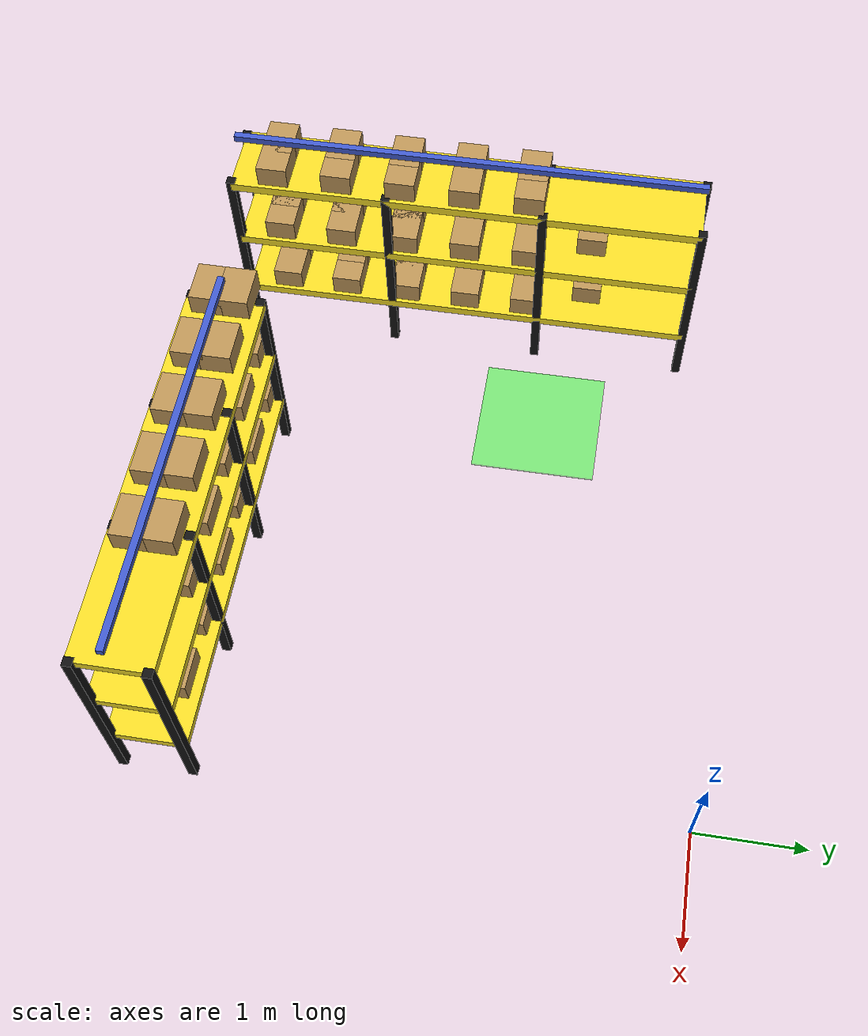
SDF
<sdf version="1.6">
 <world name="fuel_warehouse_world">
  <include><uri>model://sun</uri></include>
  <model name="left_rack_bottom">
   <static>true</static>
   <pose>-5.2 -2.7 0 0 0 1.5708</pose>
   <link name="deck_0">
    <pose>0 0 0.55 0 0 0</pose>
    <visual name="visual">
     <geometry><box><size>4.4 0.7 0.08</size></box></geometry>
     <material><ambient>0.95 0.85 0.15 1</ambient><diffuse>0.95 0.85 0.15 1</diffuse></material>
    </visual>
    <collision name="collision"><geometry><box><size>4.4 0.7 0.08</size></box></geometry></collision>
   </link>
   <link name="deck_1">
    <pose>0 0 1.25 0 0 0</pose>
    <visual name="visual">
     <geometry><box><size>4.4 0.7 0.08</size></box></geometry>
     <material><ambient>0.95 0.85 0.15 1</ambient><diffuse>0.95 0.85 0.15 1</diffuse></material>
    </visual>
    <collision name="collision"><geometry><box><size>4.4 0.7 0.08</size></box></geometry></collision>
   </link>
   <link name="deck_2">
    <pose>0 0 1.95 0 0 0</pose>
    <visual name="visual">
     <geometry><box><size>4.4 0.7 0.08</size></box></geometry>
     <material><ambient>0.95 0.85 0.15 1</ambient><diffuse>0.95 0.85 0.15 1</diffuse></material>
    </visual>
    <collision name="collision"><geometry><box><size>4.4 0.7 0.08</size></box></geometry></collision>
   </link>
   <link name="leg_0_0">
    <pose>-2.2 -0.31 1.0 0 0 0</pose>
    <visual name="visual">
     <geometry><box><size>0.08 0.08 2.0</size></box></geometry>
     <material><ambient>0.07 0.07 0.07 1</ambient><diffuse>0.07 0.07 0.07 1</diffuse></material>
    </visual>
    <collision name="collision"><geometry><box><size>0.08 0.08 2.0</size></box></geometry></collision>
   </link>
   <link name="leg_0_1">
    <pose>-2.2 0.31 1.0 0 0 0</pose>
    <visual name="visual">
     <geometry><box><size>0.08 0.08 2.0</size></box></geometry>
     <material><ambient>0.07 0.07 0.07 1</ambient><diffuse>0.07 0.07 0.07 1</diffuse></material>
    </visual>
    <collision name="collision"><geometry><box><size>0.08 0.08 2.0</size></box></geometry></collision>
   </link>
   <link name="leg_1_0">
    <pose>-0.7333333333333334 -0.31 1.0 0 0 0</pose>
    <visual name="visual">
     <geometry><box><size>0.08 0.08 2.0</size></box></geometry>
     <material><ambient>0.07 0.07 0.07 1</ambient><diffuse>0.07 0.07 0.07 1</diffuse></material>
    </visual>
    <collision name="collision"><geometry><box><size>0.08 0.08 2.0</size></box></geometry></collision>
   </link>
   <link name="leg_1_1">
    <pose>-0.7333333333333334 0.31 1.0 0 0 0</pose>
    <visual name="visual">
     <geometry><box><size>0.08 0.08 2.0</size></box></geometry>
     <material><ambient>0.07 0.07 0.07 1</ambient><diffuse>0.07 0.07 0.07 1</diffuse></material>
    </visual>
    <collision name="collision"><geometry><box><size>0.08 0.08 2.0</size></box></geometry></collision>
   </link>
   <link name="leg_2_0">
    <pose>0.7333333333333334 -0.31 1.0 0 0 0</pose>
    <visual name="visual">
     <geometry><box><size>0.08 0.08 2.0</size></box></geometry>
     <material><ambient>0.07 0.07 0.07 1</ambient><diffuse>0.07 0.07 0.07 1</diffuse></material>
    </visual>
    <collision name="collision"><geometry><box><size>0.08 0.08 2.0</size></box></geometry></collision>
   </link>
   <link name="leg_2_1">
    <pose>0.7333333333333334 0.31 1.0 0 0 0</pose>
    <visual name="visual">
     <geometry><box><size>0.08 0.08 2.0</size></box></geometry>
     <material><ambient>0.07 0.07 0.07 1</ambient><diffuse>0.07 0.07 0.07 1</diffuse></material>
    </visual>
    <collision name="collision"><geometry><box><size>0.08 0.08 2.0</size></box></geometry></collision>
   </link>
   <link name="leg_3_0">
    <pose>2.2 -0.31 1.0 0 0 0</pose>
    <visual name="visual">
     <geometry><box><size>0.08 0.08 2.0</size></box></geometry>
     <material><ambient>0.07 0.07 0.07 1</ambient><diffuse>0.07 0.07 0.07 1</diffuse></material>
    </visual>
    <collision name="collision"><geometry><box><size>0.08 0.08 2.0</size></box></geometry></collision>
   </link>
   <link name="leg_3_1">
    <pose>2.2 0.31 1.0 0 0 0</pose>
    <visual name="visual">
     <geometry><box><size>0.08 0.08 2.0</size></box></geometry>
     <material><ambient>0.07 0.07 0.07 1</ambient><diffuse>0.07 0.07 0.07 1</diffuse></material>
    </visual>
    <collision name="collision"><geometry><box><size>0.08 0.08 2.0</size></box></geometry></collision>
   </link>
   <link name="top_beam">
    <pose>0 0 2.25 0 0 0</pose>
    <visual name="visual">
     <geometry><box><size>4.4 0.06 0.06</size></box></geometry>
     <material><ambient>0.25 0.35 0.8 1</ambient><diffuse>0.25 0.35 0.8 1</diffuse></material>
    </visual>
   </link>
  </model>
  <model name="left_rack_bottom_box_0">
   <static>true</static>
   <pose>-5.079993388231624 -4.4999995592032445 0.68 0 0 0</pose>
   <link name="link">
    <visual name="visual">
     <geometry><box><size>0.38 0.28 0.22</size></box></geometry>
     <material><ambient>0.73 0.58 0.34 1</ambient><diffuse>0.73 0.58 0.34 1</diffuse></material>
    </visual>
    <collision name="collision"><geometry><box><size>0.38 0.28 0.22</size></box></geometry></collision>
   </link>
  </model>
  <model name="left_rack_bottom_box_1">
   <static>true</static>
   <pose>-5.319993388230004 -4.500000440772469 0.68 0 0 0</pose>
   <link name="link">
    <visual name="visual">
     <geometry><box><size>0.38 0.28 0.22</size></box></geometry>
     <material><ambient>0.73 0.58 0.34 1</ambient><diffuse>0.73 0.58 0.34 1</diffuse></material>
    </visual>
    <collision name="collision"><geometry><box><size>0.38 0.28 0.22</size></box></geometry></collision>
   </link>
  </model>
  <model name="left_rack_bottom_box_2">
   <static>true</static>
   <pose>-5.079995592154686 -3.8999995592072922 0.68 0 0 0</pose>
   <link name="link">
    <visual name="visual">
     <geometry><box><size>0.38 0.28 0.22</size></box></geometry>
     <material><ambient>0.73 0.58 0.34 1</ambient><diffuse>0.73 0.58 0.34 1</diffuse></material>
    </visual>
    <collision name="collision"><geometry><box><size>0.38 0.28 0.22</size></box></geometry></collision>
   </link>
  </model>
  <model name="left_rack_bottom_box_3">
   <static>true</static>
   <pose>-5.319995592153067 -3.900000440776517 0.68 0 0 0</pose>
   <link name="link">
    <visual name="visual">
     <geometry><box><size>0.38 0.28 0.22</size></box></geometry>
     <material><ambient>0.73 0.58 0.34 1</ambient><diffuse>0.73 0.58 0.34 1</diffuse></material>
    </visual>
    <collision name="collision"><geometry><box><size>0.38 0.28 0.22</size></box></geometry></collision>
   </link>
  </model>
  <model name="left_rack_bottom_box_4">
   <static>true</static>
   <pose>-5.079997796077748 -3.29999955921134 0.68 0 0 0</pose>
   <link name="link">
    <visual name="visual">
     <geometry><box><size>0.38 0.28 0.22</size></box></geometry>
     <material><ambient>0.73 0.58 0.34 1</ambient><diffuse>0.73 0.58 0.34 1</diffuse></material>
    </visual>
    <collision name="collision"><geometry><box><size>0.38 0.28 0.22</size></box></geometry></collision>
   </link>
  </model>
  <model name="left_rack_bottom_box_5">
   <static>true</static>
   <pose>-5.319997796076128 -3.3000004407805648 0.68 0 0 0</pose>
   <link name="link">
    <visual name="visual">
     <geometry><box><size>0.38 0.28 0.22</size></box></geometry>
     <material><ambient>0.73 0.58 0.34 1</ambient><diffuse>0.73 0.58 0.34 1</diffuse></material>
    </visual>
    <collision name="collision"><geometry><box><size>0.38 0.28 0.22</size></box></geometry></collision>
   </link>
  </model>
  <model name="left_rack_bottom_box_6">
   <static>true</static>
   <pose>-5.08000000000081 -2.699999559215388 0.68 0 0 0</pose>
   <link name="link">
    <visual name="visual">
     <geometry><box><size>0.38 0.28 0.22</size></box></geometry>
     <material><ambient>0.73 0.58 0.34 1</ambient><diffuse>0.73 0.58 0.34 1</diffuse></material>
    </visual>
    <collision name="collision"><geometry><box><size>0.38 0.28 0.22</size></box></geometry></collision>
   </link>
  </model>
  <model name="left_rack_bottom_box_7">
   <static>true</static>
   <pose>-5.31999999999919 -2.7000004407846125 0.68 0 0 0</pose>
   <link name="link">
    <visual name="visual">
     <geometry><box><size>0.38 0.28 0.22</size></box></geometry>
     <material><ambient>0.73 0.58 0.34 1</ambient><diffuse>0.73 0.58 0.34 1</diffuse></material>
    </visual>
    <collision name="collision"><geometry><box><size>0.38 0.28 0.22</size></box></geometry></collision>
   </link>
  </model>
  <model name="left_rack_bottom_box_8">
   <static>true</static>
   <pose>-5.080002203923872 -2.0999995592194356 0.68 0 0 0</pose>
   <link name="link">
    <visual name="visual">
     <geometry><box><size>0.38 0.28 0.22</size></box></geometry>
     <material><ambient>0.73 0.58 0.34 1</ambient><diffuse>0.73 0.58 0.34 1</diffuse></material>
    </visual>
    <collision name="collision"><geometry><box><size>0.38 0.28 0.22</size></box></geometry></collision>
   </link>
  </model>
  <model name="left_rack_bottom_box_9">
   <static>true</static>
   <pose>-5.320002203922252 -2.1000004407886603 0.68 0 0 0</pose>
   <link name="link">
    <visual name="visual">
     <geometry><box><size>0.38 0.28 0.22</size></box></geometry>
     <material><ambient>0.73 0.58 0.34 1</ambient><diffuse>0.73 0.58 0.34 1</diffuse></material>
    </visual>
    <collision name="collision"><geometry><box><size>0.38 0.28 0.22</size></box></geometry></collision>
   </link>
  </model>
  <model name="left_rack_bottom_box_11">
   <static>true</static>
   <pose>-5.320004407845314 -1.5000004407927081 0.68 0 0 0</pose>
   <link name="link">
    <visual name="visual">
     <geometry><box><size>0.38 0.28 0.22</size></box></geometry>
     <material><ambient>0.73 0.58 0.34 1</ambient><diffuse>0.73 0.58 0.34 1</diffuse></material>
    </visual>
    <collision name="collision"><geometry><box><size>0.38 0.28 0.22</size></box></geometry></collision>
   </link>
  </model>
  <model name="left_rack_bottom_box_14">
   <static>true</static>
   <pose>-5.079993388231624 -4.4999995592032445 1.38 0 0 0</pose>
   <link name="link">
    <visual name="visual">
     <geometry><box><size>0.38 0.28 0.22</size></box></geometry>
     <material><ambient>0.73 0.58 0.34 1</ambient><diffuse>0.73 0.58 0.34 1</diffuse></material>
    </visual>
    <collision name="collision"><geometry><box><size>0.38 0.28 0.22</size></box></geometry></collision>
   </link>
  </model>
  <model name="left_rack_bottom_box_15">
   <static>true</static>
   <pose>-5.319993388230004 -4.500000440772469 1.38 0 0 0</pose>
   <link name="link">
    <visual name="visual">
     <geometry><box><size>0.38 0.28 0.22</size></box></geometry>
     <material><ambient>0.73 0.58 0.34 1</ambient><diffuse>0.73 0.58 0.34 1</diffuse></material>
    </visual>
    <collision name="collision"><geometry><box><size>0.38 0.28 0.22</size></box></geometry></collision>
   </link>
  </model>
  <model name="left_rack_bottom_box_16">
   <static>true</static>
   <pose>-5.079995592154686 -3.8999995592072922 1.38 0 0 0</pose>
   <link name="link">
    <visual name="visual">
     <geometry><box><size>0.38 0.28 0.22</size></box></geometry>
     <material><ambient>0.73 0.58 0.34 1</ambient><diffuse>0.73 0.58 0.34 1</diffuse></material>
    </visual>
    <collision name="collision"><geometry><box><size>0.38 0.28 0.22</size></box></geometry></collision>
   </link>
  </model>
  <model name="left_rack_bottom_box_17">
   <static>true</static>
   <pose>-5.319995592153067 -3.900000440776517 1.38 0 0 0</pose>
   <link name="link">
    <visual name="visual">
     <geometry><box><size>0.38 0.28 0.22</size></box></geometry>
     <material><ambient>0.73 0.58 0.34 1</ambient><diffuse>0.73 0.58 0.34 1</diffuse></material>
    </visual>
    <collision name="collision"><geometry><box><size>0.38 0.28 0.22</size></box></geometry></collision>
   </link>
  </model>
  <model name="left_rack_bottom_box_18">
   <static>true</static>
   <pose>-5.079997796077748 -3.29999955921134 1.38 0 0 0</pose>
   <link name="link">
    <visual name="visual">
     <geometry><box><size>0.38 0.28 0.22</size></box></geometry>
     <material><ambient>0.73 0.58 0.34 1</ambient><diffuse>0.73 0.58 0.34 1</diffuse></material>
    </visual>
    <collision name="collision"><geometry><box><size>0.38 0.28 0.22</size></box></geometry></collision>
   </link>
  </model>
  <model name="left_rack_bottom_box_19">
   <static>true</static>
   <pose>-5.319997796076128 -3.3000004407805648 1.38 0 0 0</pose>
   <link name="link">
    <visual name="visual">
     <geometry><box><size>0.38 0.28 0.22</size></box></geometry>
     <material><ambient>0.73 0.58 0.34 1</ambient><diffuse>0.73 0.58 0.34 1</diffuse></material>
    </visual>
    <collision name="collision"><geometry><box><size>0.38 0.28 0.22</size></box></geometry></collision>
   </link>
  </model>
  <model name="left_rack_bottom_box_20">
   <static>true</static>
   <pose>-5.08000000000081 -2.699999559215388 1.38 0 0 0</pose>
   <link name="link">
    <visual name="visual">
     <geometry><box><size>0.38 0.28 0.22</size></box></geometry>
     <material><ambient>0.73 0.58 0.34 1</ambient><diffuse>0.73 0.58 0.34 1</diffuse></material>
    </visual>
    <collision name="collision"><geometry><box><size>0.38 0.28 0.22</size></box></geometry></collision>
   </link>
  </model>
  <model name="left_rack_bottom_box_21">
   <static>true</static>
   <pose>-5.31999999999919 -2.7000004407846125 1.38 0 0 0</pose>
   <link name="link">
    <visual name="visual">
     <geometry><box><size>0.38 0.28 0.22</size></box></geometry>
     <material><ambient>0.73 0.58 0.34 1</ambient><diffuse>0.73 0.58 0.34 1</diffuse></material>
    </visual>
    <collision name="collision"><geometry><box><size>0.38 0.28 0.22</size></box></geometry></collision>
   </link>
  </model>
  <model name="left_rack_bottom_box_22">
   <static>true</static>
   <pose>-5.080002203923872 -2.0999995592194356 1.38 0 0 0</pose>
   <link name="link">
    <visual name="visual">
     <geometry><box><size>0.38 0.28 0.22</size></box></geometry>
     <material><ambient>0.73 0.58 0.34 1</ambient><diffuse>0.73 0.58 0.34 1</diffuse></material>
    </visual>
    <collision name="collision"><geometry><box><size>0.38 0.28 0.22</size></box></geometry></collision>
   </link>
  </model>
  <model name="left_rack_bottom_box_23">
   <static>true</static>
   <pose>-5.320002203922252 -2.1000004407886603 1.38 0 0 0</pose>
   <link name="link">
    <visual name="visual">
     <geometry><box><size>0.38 0.28 0.22</size></box></geometry>
     <material><ambient>0.73 0.58 0.34 1</ambient><diffuse>0.73 0.58 0.34 1</diffuse></material>
    </visual>
    <collision name="collision"><geometry><box><size>0.38 0.28 0.22</size></box></geometry></collision>
   </link>
  </model>
  <model name="left_rack_bottom_box_25">
   <static>true</static>
   <pose>-5.320004407845314 -1.5000004407927081 1.38 0 0 0</pose>
   <link name="link">
    <visual name="visual">
     <geometry><box><size>0.38 0.28 0.22</size></box></geometry>
     <material><ambient>0.73 0.58 0.34 1</ambient><diffuse>0.73 0.58 0.34 1</diffuse></material>
    </visual>
    <collision name="collision"><geometry><box><size>0.38 0.28 0.22</size></box></geometry></collision>
   </link>
  </model>
  <model name="left_rack_bottom_box_28">
   <static>true</static>
   <pose>-5.079993388231624 -4.4999995592032445 2.08 0 0 0</pose>
   <link name="link">
    <visual name="visual">
     <geometry><box><size>0.38 0.28 0.22</size></box></geometry>
     <material><ambient>0.73 0.58 0.34 1</ambient><diffuse>0.73 0.58 0.34 1</diffuse></material>
    </visual>
    <collision name="collision"><geometry><box><size>0.38 0.28 0.22</size></box></geometry></collision>
   </link>
  </model>
  <model name="left_rack_bottom_box_29">
   <static>true</static>
   <pose>-5.319993388230004 -4.500000440772469 2.08 0 0 0</pose>
   <link name="link">
    <visual name="visual">
     <geometry><box><size>0.38 0.28 0.22</size></box></geometry>
     <material><ambient>0.73 0.58 0.34 1</ambient><diffuse>0.73 0.58 0.34 1</diffuse></material>
    </visual>
    <collision name="collision"><geometry><box><size>0.38 0.28 0.22</size></box></geometry></collision>
   </link>
  </model>
  <model name="left_rack_bottom_box_30">
   <static>true</static>
   <pose>-5.079995592154686 -3.8999995592072922 2.08 0 0 0</pose>
   <link name="link">
    <visual name="visual">
     <geometry><box><size>0.38 0.28 0.22</size></box></geometry>
     <material><ambient>0.73 0.58 0.34 1</ambient><diffuse>0.73 0.58 0.34 1</diffuse></material>
    </visual>
    <collision name="collision"><geometry><box><size>0.38 0.28 0.22</size></box></geometry></collision>
   </link>
  </model>
  <model name="left_rack_bottom_box_31">
   <static>true</static>
   <pose>-5.319995592153067 -3.900000440776517 2.08 0 0 0</pose>
   <link name="link">
    <visual name="visual">
     <geometry><box><size>0.38 0.28 0.22</size></box></geometry>
     <material><ambient>0.73 0.58 0.34 1</ambient><diffuse>0.73 0.58 0.34 1</diffuse></material>
    </visual>
    <collision name="collision"><geometry><box><size>0.38 0.28 0.22</size></box></geometry></collision>
   </link>
  </model>
  <model name="left_rack_bottom_box_32">
   <static>true</static>
   <pose>-5.079997796077748 -3.29999955921134 2.08 0 0 0</pose>
   <link name="link">
    <visual name="visual">
     <geometry><box><size>0.38 0.28 0.22</size></box></geometry>
     <material><ambient>0.73 0.58 0.34 1</ambient><diffuse>0.73 0.58 0.34 1</diffuse></material>
    </visual>
    <collision name="collision"><geometry><box><size>0.38 0.28 0.22</size></box></geometry></collision>
   </link>
  </model>
  <model name="left_rack_bottom_box_33">
   <static>true</static>
   <pose>-5.319997796076128 -3.3000004407805648 2.08 0 0 0</pose>
   <link name="link">
    <visual name="visual">
     <geometry><box><size>0.38 0.28 0.22</size></box></geometry>
     <material><ambient>0.73 0.58 0.34 1</ambient><diffuse>0.73 0.58 0.34 1</diffuse></material>
    </visual>
    <collision name="collision"><geometry><box><size>0.38 0.28 0.22</size></box></geometry></collision>
   </link>
  </model>
  <model name="left_rack_bottom_box_34">
   <static>true</static>
   <pose>-5.08000000000081 -2.699999559215388 2.08 0 0 0</pose>
   <link name="link">
    <visual name="visual">
     <geometry><box><size>0.38 0.28 0.22</size></box></geometry>
     <material><ambient>0.73 0.58 0.34 1</ambient><diffuse>0.73 0.58 0.34 1</diffuse></material>
    </visual>
    <collision name="collision"><geometry><box><size>0.38 0.28 0.22</size></box></geometry></collision>
   </link>
  </model>
  <model name="left_rack_bottom_box_35">
   <static>true</static>
   <pose>-5.31999999999919 -2.7000004407846125 2.08 0 0 0</pose>
   <link name="link">
    <visual name="visual">
     <geometry><box><size>0.38 0.28 0.22</size></box></geometry>
     <material><ambient>0.73 0.58 0.34 1</ambient><diffuse>0.73 0.58 0.34 1</diffuse></material>
    </visual>
    <collision name="collision"><geometry><box><size>0.38 0.28 0.22</size></box></geometry></collision>
   </link>
  </model>
  <model name="left_rack_bottom_box_36">
   <static>true</static>
   <pose>-5.080002203923872 -2.0999995592194356 2.08 0 0 0</pose>
   <link name="link">
    <visual name="visual">
     <geometry><box><size>0.38 0.28 0.22</size></box></geometry>
     <material><ambient>0.73 0.58 0.34 1</ambient><diffuse>0.73 0.58 0.34 1</diffuse></material>
    </visual>
    <collision name="collision"><geometry><box><size>0.38 0.28 0.22</size></box></geometry></collision>
   </link>
  </model>
  <model name="left_rack_bottom_box_37">
   <static>true</static>
   <pose>-5.320002203922252 -2.1000004407886603 2.08 0 0 0</pose>
   <link name="link">
    <visual name="visual">
     <geometry><box><size>0.38 0.28 0.22</size></box></geometry>
     <material><ambient>0.73 0.58 0.34 1</ambient><diffuse>0.73 0.58 0.34 1</diffuse></material>
    </visual>
    <collision name="collision"><geometry><box><size>0.38 0.28 0.22</size></box></geometry></collision>
   </link>
  </model>
  <model name="bottom_left">
   <static>true</static>
   <pose>-1.7 -4.6 0 0 0 0.0</pose>
   <link name="deck_0">
    <pose>0 0 0.55 0 0 0</pose>
    <visual name="visual">
     <geometry><box><size>3.6 0.7 0.08</size></box></geometry>
     <material><ambient>0.95 0.85 0.15 1</ambient><diffuse>0.95 0.85 0.15 1</diffuse></material>
    </visual>
    <collision name="collision"><geometry><box><size>3.6 0.7 0.08</size></box></geometry></collision>
   </link>
   <link name="deck_1">
    <pose>0 0 1.25 0 0 0</pose>
    <visual name="visual">
     <geometry><box><size>3.6 0.7 0.08</size></box></geometry>
     <material><ambient>0.95 0.85 0.15 1</ambient><diffuse>0.95 0.85 0.15 1</diffuse></material>
    </visual>
    <collision name="collision"><geometry><box><size>3.6 0.7 0.08</size></box></geometry></collision>
   </link>
   <link name="deck_2">
    <pose>0 0 1.95 0 0 0</pose>
    <visual name="visual">
     <geometry><box><size>3.6 0.7 0.08</size></box></geometry>
     <material><ambient>0.95 0.85 0.15 1</ambient><diffuse>0.95 0.85 0.15 1</diffuse></material>
    </visual>
    <collision name="collision"><geometry><box><size>3.6 0.7 0.08</size></box></geometry></collision>
   </link>
   <link name="leg_0_0">
    <pose>-1.8 -0.31 1.0 0 0 0</pose>
    <visual name="visual">
     <geometry><box><size>0.08 0.08 2.0</size></box></geometry>
     <material><ambient>0.07 0.07 0.07 1</ambient><diffuse>0.07 0.07 0.07 1</diffuse></material>
    </visual>
    <collision name="collision"><geometry><box><size>0.08 0.08 2.0</size></box></geometry></collision>
   </link>
   <link name="leg_0_1">
    <pose>-1.8 0.31 1.0 0 0 0</pose>
    <visual name="visual">
     <geometry><box><size>0.08 0.08 2.0</size></box></geometry>
     <material><ambient>0.07 0.07 0.07 1</ambient><diffuse>0.07 0.07 0.07 1</diffuse></material>
    </visual>
    <collision name="collision"><geometry><box><size>0.08 0.08 2.0</size></box></geometry></collision>
   </link>
   <link name="leg_1_0">
    <pose>-0.6 -0.31 1.0 0 0 0</pose>
    <visual name="visual">
     <geometry><box><size>0.08 0.08 2.0</size></box></geometry>
     <material><ambient>0.07 0.07 0.07 1</ambient><diffuse>0.07 0.07 0.07 1</diffuse></material>
    </visual>
    <collision name="collision"><geometry><box><size>0.08 0.08 2.0</size></box></geometry></collision>
   </link>
   <link name="leg_1_1">
    <pose>-0.6 0.31 1.0 0 0 0</pose>
    <visual name="visual">
     <geometry><box><size>0.08 0.08 2.0</size></box></geometry>
     <material><ambient>0.07 0.07 0.07 1</ambient><diffuse>0.07 0.07 0.07 1</diffuse></material>
    </visual>
    <collision name="collision"><geometry><box><size>0.08 0.08 2.0</size></box></geometry></collision>
   </link>
   <link name="leg_2_0">
    <pose>0.6 -0.31 1.0 0 0 0</pose>
    <visual name="visual">
     <geometry><box><size>0.08 0.08 2.0</size></box></geometry>
     <material><ambient>0.07 0.07 0.07 1</ambient><diffuse>0.07 0.07 0.07 1</diffuse></material>
    </visual>
    <collision name="collision"><geometry><box><size>0.08 0.08 2.0</size></box></geometry></collision>
   </link>
   <link name="leg_2_1">
    <pose>0.6 0.31 1.0 0 0 0</pose>
    <visual name="visual">
     <geometry><box><size>0.08 0.08 2.0</size></box></geometry>
     <material><ambient>0.07 0.07 0.07 1</ambient><diffuse>0.07 0.07 0.07 1</diffuse></material>
    </visual>
    <collision name="collision"><geometry><box><size>0.08 0.08 2.0</size></box></geometry></collision>
   </link>
   <link name="leg_3_0">
    <pose>1.8 -0.31 1.0 0 0 0</pose>
    <visual name="visual">
     <geometry><box><size>0.08 0.08 2.0</size></box></geometry>
     <material><ambient>0.07 0.07 0.07 1</ambient><diffuse>0.07 0.07 0.07 1</diffuse></material>
    </visual>
    <collision name="collision"><geometry><box><size>0.08 0.08 2.0</size></box></geometry></collision>
   </link>
   <link name="leg_3_1">
    <pose>1.8 0.31 1.0 0 0 0</pose>
    <visual name="visual">
     <geometry><box><size>0.08 0.08 2.0</size></box></geometry>
     <material><ambient>0.07 0.07 0.07 1</ambient><diffuse>0.07 0.07 0.07 1</diffuse></material>
    </visual>
    <collision name="collision"><geometry><box><size>0.08 0.08 2.0</size></box></geometry></collision>
   </link>
   <link name="top_beam">
    <pose>0 0 2.25 0 0 0</pose>
    <visual name="visual">
     <geometry><box><size>3.6 0.06 0.06</size></box></geometry>
     <material><ambient>0.25 0.35 0.8 1</ambient><diffuse>0.25 0.35 0.8 1</diffuse></material>
    </visual>
   </link>
  </model>
  <model name="bottom_left_box_0">
   <static>true</static>
   <pose>-3.5 -4.72 0.68 0 0 0</pose>
   <link name="link">
    <visual name="visual">
     <geometry><box><size>0.38 0.28 0.22</size></box></geometry>
     <material><ambient>0.73 0.58 0.34 1</ambient><diffuse>0.73 0.58 0.34 1</diffuse></material>
    </visual>
    <collision name="collision"><geometry><box><size>0.38 0.28 0.22</size></box></geometry></collision>
   </link>
  </model>
  <model name="bottom_left_box_1">
   <static>true</static>
   <pose>-3.5 -4.4799999999999995 0.68 0 0 0</pose>
   <link name="link">
    <visual name="visual">
     <geometry><box><size>0.38 0.28 0.22</size></box></geometry>
     <material><ambient>0.73 0.58 0.34 1</ambient><diffuse>0.73 0.58 0.34 1</diffuse></material>
    </visual>
    <collision name="collision"><geometry><box><size>0.38 0.28 0.22</size></box></geometry></collision>
   </link>
  </model>
  <model name="bottom_left_box_2">
   <static>true</static>
   <pose>-2.9 -4.72 0.68 0 0 0</pose>
   <link name="link">
    <visual name="visual">
     <geometry><box><size>0.38 0.28 0.22</size></box></geometry>
     <material><ambient>0.73 0.58 0.34 1</ambient><diffuse>0.73 0.58 0.34 1</diffuse></material>
    </visual>
    <collision name="collision"><geometry><box><size>0.38 0.28 0.22</size></box></geometry></collision>
   </link>
  </model>
  <model name="bottom_left_box_3">
   <static>true</static>
   <pose>-2.9 -4.4799999999999995 0.68 0 0 0</pose>
   <link name="link">
    <visual name="visual">
     <geometry><box><size>0.38 0.28 0.22</size></box></geometry>
     <material><ambient>0.73 0.58 0.34 1</ambient><diffuse>0.73 0.58 0.34 1</diffuse></material>
    </visual>
    <collision name="collision"><geometry><box><size>0.38 0.28 0.22</size></box></geometry></collision>
   </link>
  </model>
  <model name="bottom_left_box_4">
   <static>true</static>
   <pose>-2.3 -4.72 0.68 0 0 0</pose>
   <link name="link">
    <visual name="visual">
     <geometry><box><size>0.38 0.28 0.22</size></box></geometry>
     <material><ambient>0.73 0.58 0.34 1</ambient><diffuse>0.73 0.58 0.34 1</diffuse></material>
    </visual>
    <collision name="collision"><geometry><box><size>0.38 0.28 0.22</size></box></geometry></collision>
   </link>
  </model>
  <model name="bottom_left_box_5">
   <static>true</static>
   <pose>-2.3 -4.4799999999999995 0.68 0 0 0</pose>
   <link name="link">
    <visual name="visual">
     <geometry><box><size>0.38 0.28 0.22</size></box></geometry>
     <material><ambient>0.73 0.58 0.34 1</ambient><diffuse>0.73 0.58 0.34 1</diffuse></material>
    </visual>
    <collision name="collision"><geometry><box><size>0.38 0.28 0.22</size></box></geometry></collision>
   </link>
  </model>
  <model name="bottom_left_box_6">
   <static>true</static>
   <pose>-1.7 -4.72 0.68 0 0 0</pose>
   <link name="link">
    <visual name="visual">
     <geometry><box><size>0.38 0.28 0.22</size></box></geometry>
     <material><ambient>0.73 0.58 0.34 1</ambient><diffuse>0.73 0.58 0.34 1</diffuse></material>
    </visual>
    <collision name="collision"><geometry><box><size>0.38 0.28 0.22</size></box></geometry></collision>
   </link>
  </model>
  <model name="bottom_left_box_7">
   <static>true</static>
   <pose>-1.7 -4.4799999999999995 0.68 0 0 0</pose>
   <link name="link">
    <visual name="visual">
     <geometry><box><size>0.38 0.28 0.22</size></box></geometry>
     <material><ambient>0.73 0.58 0.34 1</ambient><diffuse>0.73 0.58 0.34 1</diffuse></material>
    </visual>
    <collision name="collision"><geometry><box><size>0.38 0.28 0.22</size></box></geometry></collision>
   </link>
  </model>
  <model name="bottom_left_box_8">
   <static>true</static>
   <pose>-1.1 -4.72 0.68 0 0 0</pose>
   <link name="link">
    <visual name="visual">
     <geometry><box><size>0.38 0.28 0.22</size></box></geometry>
     <material><ambient>0.73 0.58 0.34 1</ambient><diffuse>0.73 0.58 0.34 1</diffuse></material>
    </visual>
    <collision name="collision"><geometry><box><size>0.38 0.28 0.22</size></box></geometry></collision>
   </link>
  </model>
  <model name="bottom_left_box_9">
   <static>true</static>
   <pose>-1.1 -4.4799999999999995 0.68 0 0 0</pose>
   <link name="link">
    <visual name="visual">
     <geometry><box><size>0.38 0.28 0.22</size></box></geometry>
     <material><ambient>0.73 0.58 0.34 1</ambient><diffuse>0.73 0.58 0.34 1</diffuse></material>
    </visual>
    <collision name="collision"><geometry><box><size>0.38 0.28 0.22</size></box></geometry></collision>
   </link>
  </model>
  <model name="bottom_left_box_10">
   <static>true</static>
   <pose>-0.5 -4.72 0.68 0 0 0</pose>
   <link name="link">
    <visual name="visual">
     <geometry><box><size>0.38 0.28 0.22</size></box></geometry>
     <material><ambient>0.73 0.58 0.34 1</ambient><diffuse>0.73 0.58 0.34 1</diffuse></material>
    </visual>
    <collision name="collision"><geometry><box><size>0.38 0.28 0.22</size></box></geometry></collision>
   </link>
  </model>
  <model name="bottom_left_box_11">
   <static>true</static>
   <pose>-0.5 -4.4799999999999995 0.68 0 0 0</pose>
   <link name="link">
    <visual name="visual">
     <geometry><box><size>0.38 0.28 0.22</size></box></geometry>
     <material><ambient>0.73 0.58 0.34 1</ambient><diffuse>0.73 0.58 0.34 1</diffuse></material>
    </visual>
    <collision name="collision"><geometry><box><size>0.38 0.28 0.22</size></box></geometry></collision>
   </link>
  </model>
  <model name="bottom_left_box_14">
   <static>true</static>
   <pose>-3.5 -4.72 1.38 0 0 0</pose>
   <link name="link">
    <visual name="visual">
     <geometry><box><size>0.38 0.28 0.22</size></box></geometry>
     <material><ambient>0.73 0.58 0.34 1</ambient><diffuse>0.73 0.58 0.34 1</diffuse></material>
    </visual>
    <collision name="collision"><geometry><box><size>0.38 0.28 0.22</size></box></geometry></collision>
   </link>
  </model>
  <model name="bottom_left_box_15">
   <static>true</static>
   <pose>-3.5 -4.4799999999999995 1.38 0 0 0</pose>
   <link name="link">
    <visual name="visual">
     <geometry><box><size>0.38 0.28 0.22</size></box></geometry>
     <material><ambient>0.73 0.58 0.34 1</ambient><diffuse>0.73 0.58 0.34 1</diffuse></material>
    </visual>
    <collision name="collision"><geometry><box><size>0.38 0.28 0.22</size></box></geometry></collision>
   </link>
  </model>
  <model name="bottom_left_box_16">
   <static>true</static>
   <pose>-2.9 -4.72 1.38 0 0 0</pose>
   <link name="link">
    <visual name="visual">
     <geometry><box><size>0.38 0.28 0.22</size></box></geometry>
     <material><ambient>0.73 0.58 0.34 1</ambient><diffuse>0.73 0.58 0.34 1</diffuse></material>
    </visual>
    <collision name="collision"><geometry><box><size>0.38 0.28 0.22</size></box></geometry></collision>
   </link>
  </model>
  <model name="bottom_left_box_17">
   <static>true</static>
   <pose>-2.9 -4.4799999999999995 1.38 0 0 0</pose>
   <link name="link">
    <visual name="visual">
     <geometry><box><size>0.38 0.28 0.22</size></box></geometry>
     <material><ambient>0.73 0.58 0.34 1</ambient><diffuse>0.73 0.58 0.34 1</diffuse></material>
    </visual>
    <collision name="collision"><geometry><box><size>0.38 0.28 0.22</size></box></geometry></collision>
   </link>
  </model>
  <model name="bottom_left_box_18">
   <static>true</static>
   <pose>-2.3 -4.72 1.38 0 0 0</pose>
   <link name="link">
    <visual name="visual">
     <geometry><box><size>0.38 0.28 0.22</size></box></geometry>
     <material><ambient>0.73 0.58 0.34 1</ambient><diffuse>0.73 0.58 0.34 1</diffuse></material>
    </visual>
    <collision name="collision"><geometry><box><size>0.38 0.28 0.22</size></box></geometry></collision>
   </link>
  </model>
  <model name="bottom_left_box_19">
   <static>true</static>
   <pose>-2.3 -4.4799999999999995 1.38 0 0 0</pose>
   <link name="link">
    <visual name="visual">
     <geometry><box><size>0.38 0.28 0.22</size></box></geometry>
     <material><ambient>0.73 0.58 0.34 1</ambient><diffuse>0.73 0.58 0.34 1</diffuse></material>
    </visual>
    <collision name="collision"><geometry><box><size>0.38 0.28 0.22</size></box></geometry></collision>
   </link>
  </model>
  <model name="bottom_left_box_20">
   <static>true</static>
   <pose>-1.7 -4.72 1.38 0 0 0</pose>
   <link name="link">
    <visual name="visual">
     <geometry><box><size>0.38 0.28 0.22</size></box></geometry>
     <material><ambient>0.73 0.58 0.34 1</ambient><diffuse>0.73 0.58 0.34 1</diffuse></material>
    </visual>
    <collision name="collision"><geometry><box><size>0.38 0.28 0.22</size></box></geometry></collision>
   </link>
  </model>
  <model name="bottom_left_box_21">
   <static>true</static>
   <pose>-1.7 -4.4799999999999995 1.38 0 0 0</pose>
   <link name="link">
    <visual name="visual">
     <geometry><box><size>0.38 0.28 0.22</size></box></geometry>
     <material><ambient>0.73 0.58 0.34 1</ambient><diffuse>0.73 0.58 0.34 1</diffuse></material>
    </visual>
    <collision name="collision"><geometry><box><size>0.38 0.28 0.22</size></box></geometry></collision>
   </link>
  </model>
  <model name="bottom_left_box_22">
   <static>true</static>
   <pose>-1.1 -4.72 1.38 0 0 0</pose>
   <link name="link">
    <visual name="visual">
     <geometry><box><size>0.38 0.28 0.22</size></box></geometry>
     <material><ambient>0.73 0.58 0.34 1</ambient><diffuse>0.73 0.58 0.34 1</diffuse></material>
    </visual>
    <collision name="collision"><geometry><box><size>0.38 0.28 0.22</size></box></geometry></collision>
   </link>
  </model>
  <model name="bottom_left_box_23">
   <static>true</static>
   <pose>-1.1 -4.4799999999999995 1.38 0 0 0</pose>
   <link name="link">
    <visual name="visual">
     <geometry><box><size>0.38 0.28 0.22</size></box></geometry>
     <material><ambient>0.73 0.58 0.34 1</ambient><diffuse>0.73 0.58 0.34 1</diffuse></material>
    </visual>
    <collision name="collision"><geometry><box><size>0.38 0.28 0.22</size></box></geometry></collision>
   </link>
  </model>
  <model name="bottom_left_box_28">
   <static>true</static>
   <pose>-3.5 -4.72 2.08 0 0 0</pose>
   <link name="link">
    <visual name="visual">
     <geometry><box><size>0.38 0.28 0.22</size></box></geometry>
     <material><ambient>0.73 0.58 0.34 1</ambient><diffuse>0.73 0.58 0.34 1</diffuse></material>
    </visual>
    <collision name="collision"><geometry><box><size>0.38 0.28 0.22</size></box></geometry></collision>
   </link>
  </model>
  <model name="bottom_left_box_29">
   <static>true</static>
   <pose>-3.5 -4.4799999999999995 2.08 0 0 0</pose>
   <link name="link">
    <visual name="visual">
     <geometry><box><size>0.38 0.28 0.22</size></box></geometry>
     <material><ambient>0.73 0.58 0.34 1</ambient><diffuse>0.73 0.58 0.34 1</diffuse></material>
    </visual>
    <collision name="collision"><geometry><box><size>0.38 0.28 0.22</size></box></geometry></collision>
   </link>
  </model>
  <model name="bottom_left_box_30">
   <static>true</static>
   <pose>-2.9 -4.72 2.08 0 0 0</pose>
   <link name="link">
    <visual name="visual">
     <geometry><box><size>0.38 0.28 0.22</size></box></geometry>
     <material><ambient>0.73 0.58 0.34 1</ambient><diffuse>0.73 0.58 0.34 1</diffuse></material>
    </visual>
    <collision name="collision"><geometry><box><size>0.38 0.28 0.22</size></box></geometry></collision>
   </link>
  </model>
  <model name="bottom_left_box_31">
   <static>true</static>
   <pose>-2.9 -4.4799999999999995 2.08 0 0 0</pose>
   <link name="link">
    <visual name="visual">
     <geometry><box><size>0.38 0.28 0.22</size></box></geometry>
     <material><ambient>0.73 0.58 0.34 1</ambient><diffuse>0.73 0.58 0.34 1</diffuse></material>
    </visual>
    <collision name="collision"><geometry><box><size>0.38 0.28 0.22</size></box></geometry></collision>
   </link>
  </model>
  <model name="bottom_left_box_32">
   <static>true</static>
   <pose>-2.3 -4.72 2.08 0 0 0</pose>
   <link name="link">
    <visual name="visual">
     <geometry><box><size>0.38 0.28 0.22</size></box></geometry>
     <material><ambient>0.73 0.58 0.34 1</ambient><diffuse>0.73 0.58 0.34 1</diffuse></material>
    </visual>
    <collision name="collision"><geometry><box><size>0.38 0.28 0.22</size></box></geometry></collision>
   </link>
  </model>
  <model name="bottom_left_box_33">
   <static>true</static>
   <pose>-2.3 -4.4799999999999995 2.08 0 0 0</pose>
   <link name="link">
    <visual name="visual">
     <geometry><box><size>0.38 0.28 0.22</size></box></geometry>
     <material><ambient>0.73 0.58 0.34 1</ambient><diffuse>0.73 0.58 0.34 1</diffuse></material>
    </visual>
    <collision name="collision"><geometry><box><size>0.38 0.28 0.22</size></box></geometry></collision>
   </link>
  </model>
  <model name="bottom_left_box_34">
   <static>true</static>
   <pose>-1.7 -4.72 2.08 0 0 0</pose>
   <link name="link">
    <visual name="visual">
     <geometry><box><size>0.38 0.28 0.22</size></box></geometry>
     <material><ambient>0.73 0.58 0.34 1</ambient><diffuse>0.73 0.58 0.34 1</diffuse></material>
    </visual>
    <collision name="collision"><geometry><box><size>0.38 0.28 0.22</size></box></geometry></collision>
   </link>
  </model>
  <model name="bottom_left_box_35">
   <static>true</static>
   <pose>-1.7 -4.4799999999999995 2.08 0 0 0</pose>
   <link name="link">
    <visual name="visual">
     <geometry><box><size>0.38 0.28 0.22</size></box></geometry>
     <material><ambient>0.73 0.58 0.34 1</ambient><diffuse>0.73 0.58 0.34 1</diffuse></material>
    </visual>
    <collision name="collision"><geometry><box><size>0.38 0.28 0.22</size></box></geometry></collision>
   </link>
  </model>
  <model name="bottom_left_box_36">
   <static>true</static>
   <pose>-1.1 -4.72 2.08 0 0 0</pose>
   <link name="link">
    <visual name="visual">
     <geometry><box><size>0.38 0.28 0.22</size></box></geometry>
     <material><ambient>0.73 0.58 0.34 1</ambient><diffuse>0.73 0.58 0.34 1</diffuse></material>
    </visual>
    <collision name="collision"><geometry><box><size>0.38 0.28 0.22</size></box></geometry></collision>
   </link>
  </model>
  <model name="bottom_left_box_37">
   <static>true</static>
   <pose>-1.1 -4.4799999999999995 2.08 0 0 0</pose>
   <link name="link">
    <visual name="visual">
     <geometry><box><size>0.38 0.28 0.22</size></box></geometry>
     <material><ambient>0.73 0.58 0.34 1</ambient><diffuse>0.73 0.58 0.34 1</diffuse></material>
    </visual>
    <collision name="collision"><geometry><box><size>0.38 0.28 0.22</size></box></geometry></collision>
   </link>
  </model>
  <model name="pickup_zone2">
   <static>true</static>
   <pose>-4.0 -1.8 0.01 0 0 0</pose>
   <link name="link">
    <visual name="visual">
     <geometry><box><size>1.2 1.2 0.02</size></box></geometry>
     <material><ambient>0 1 0 0.45</ambient><diffuse>0 1 0 0.45</diffuse></material>
    </visual>
   </link>
  </model>
 </world>
</sdf>
